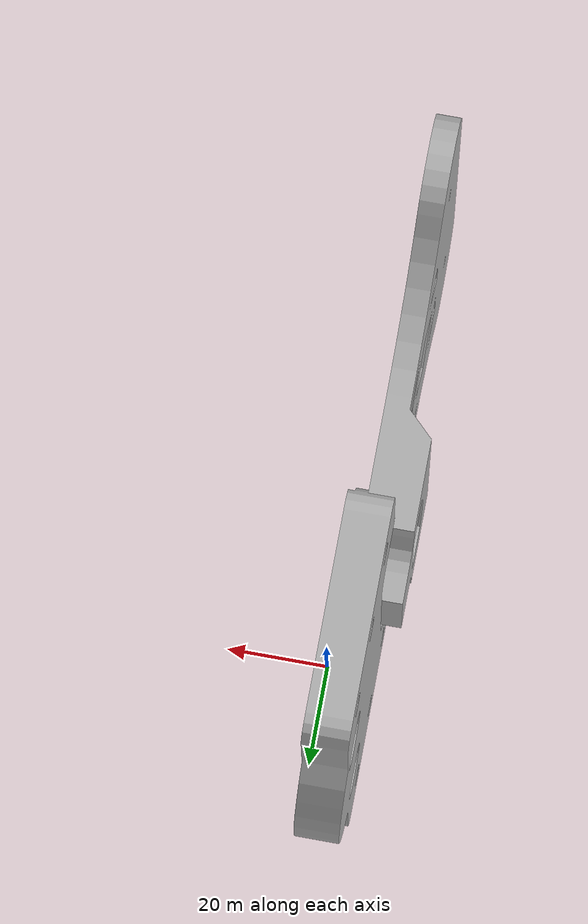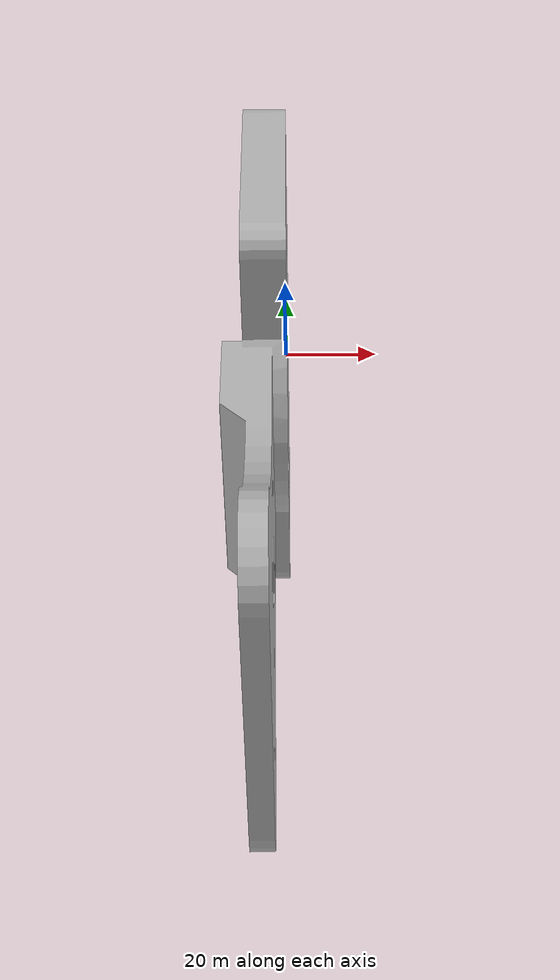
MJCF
<mujoco model="grill">
  <compiler angle="radian"/>

  <asset>
    <mesh name="grill" content_type="model/stl" file="assets/tool_hd.stl"/>
  </asset>

  <worldbody>
    <body name= "grill_body"/>
      <geom type="mesh" rgba="0.7 0.7 0.7 1" mesh="grill" pos= "0.4 -0.9 0.79" euler= "0 0 3.14"/>
    <body/>

  </worldbody>
</mujoco>
